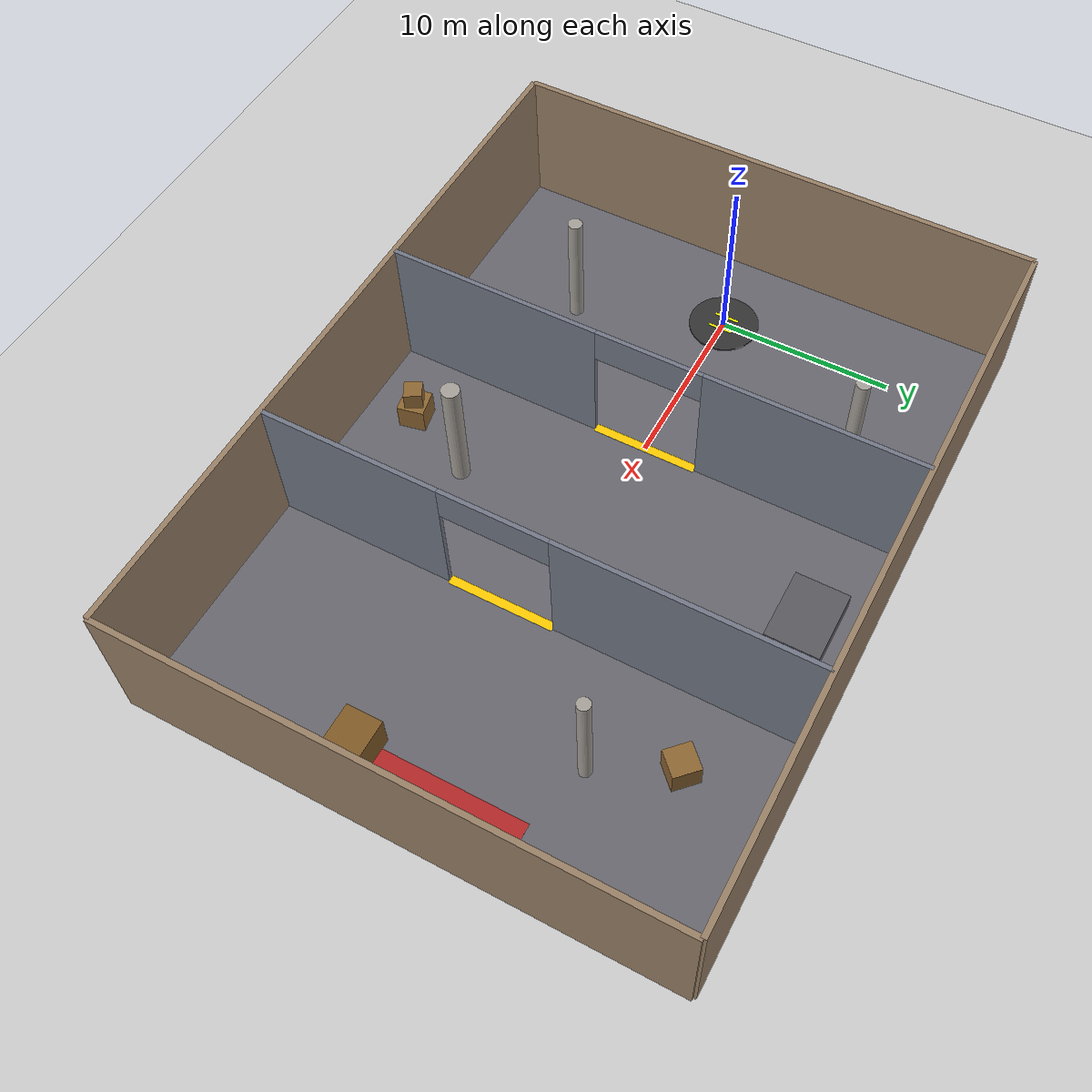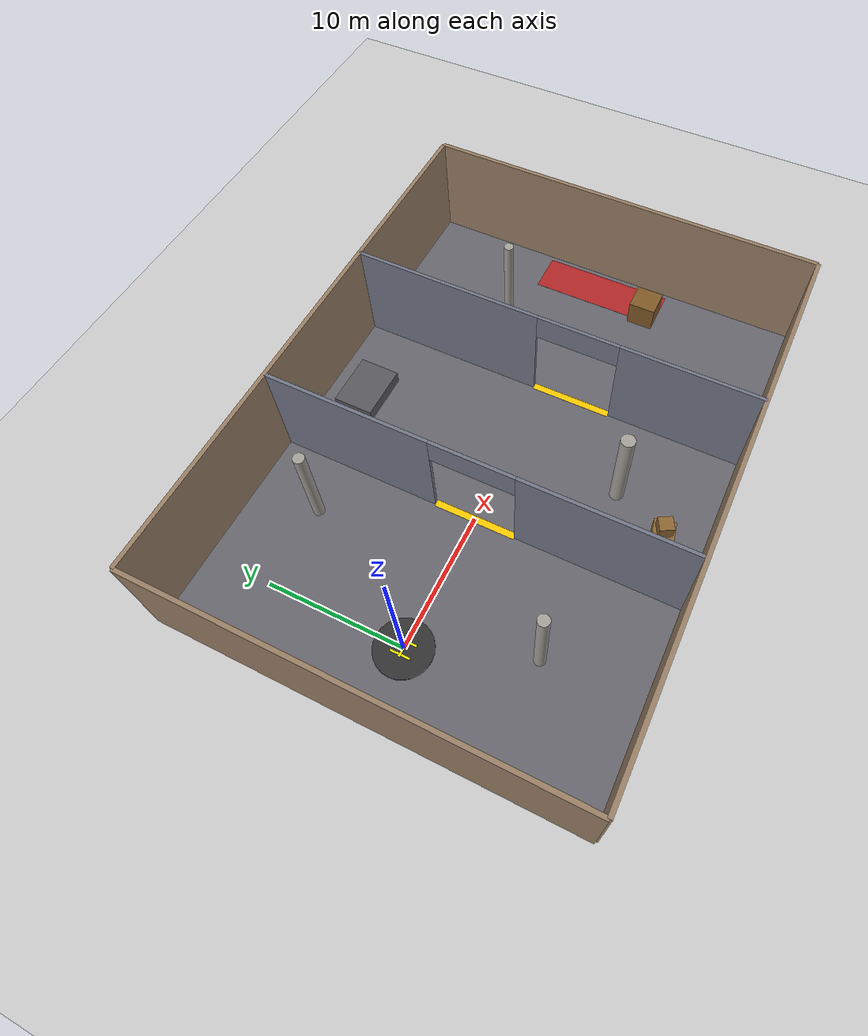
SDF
<?xml version="1.0"?>
<sdf version="1.6">
  <world name="aerial_nav_world">

    <physics type="ode">
      <max_step_size>0.001</max_step_size>
      <real_time_factor>1.0</real_time_factor>
      <real_time_update_rate>1000</real_time_update_rate>
    </physics>

    <include>
      <uri>model://sun</uri>
    </include>
    <light name="fill_light" type="directional">
      <cast_shadows>false</cast_shadows>
      <pose>0 0 20 0 0 0</pose>
      <diffuse>0.6 0.6 0.6 1</diffuse>
      <specular>0.1 0.1 0.1 1</specular>
      <direction>0.3 0.4 -1.0</direction>
    </light>
    <light name="interior_light_1" type="point">
      <pose>10 5 7 0 0 0</pose>
      <diffuse>0.9 0.8 0.6 1</diffuse>
      <specular>0.1 0.1 0.1 1</specular>
      <attenuation>
        <range>30</range>
        <constant>0.3</constant>
        <linear>0.01</linear>
        <quadratic>0.001</quadratic>
      </attenuation>
    </light>

    <light name="interior_light_2" type="point">
      <pose>20 -2 7 0 0 0</pose>
      <diffuse>0.7 0.75 0.9 1</diffuse>
      <specular>0.1 0.1 0.1 1</specular>
      <attenuation>
        <range>30</range>
        <constant>0.3</constant>
        <linear>0.01</linear>
        <quadratic>0.001</quadratic>
      </attenuation>
    </light>

    <include>
      <uri>model://ground_plane</uri>
    </include>

    <model name="arena_floor">
      <static>true</static>
      <pose>15 0 0.005 0 0 0</pose>
      <link name="floor_link">
        <visual name="visual">
          <geometry>
            <box><size>40 30 0.01</size></box>
          </geometry>
          <material>
            <ambient>0.35 0.35 0.38 1</ambient>
            <diffuse>0.4 0.4 0.43 1</diffuse>
            <specular>0.1 0.1 0.1 1</specular>
          </material>
        </visual>
      </link>
    </model>

    <gui fullscreen="0">
      <camera name="user_camera">
        <pose>-8 -18 18 0 0.55 1.1</pose>
      </camera>
    </gui>
    <model name="wall_south">
      <static>true</static>
      <pose>15 -15 4 0 0 0</pose>
      <link name="link">
        <visual name="visual">
          <geometry>
            <box><size>40 0.3 8</size></box>
          </geometry>
          <material>
            <ambient>0.55 0.45 0.35 1</ambient>
            <diffuse>0.6 0.5 0.4 1</diffuse>
            <specular>0.05 0.05 0.05 1</specular>
          </material>
        </visual>
        <collision name="collision">
          <geometry>
            <box><size>40 0.3 8</size></box>
          </geometry>
        </collision>
      </link>
    </model>

    <model name="wall_north">
      <static>true</static>
      <pose>15 15 4 0 0 0</pose>
      <link name="link">
        <visual name="visual">
          <geometry>
            <box><size>40 0.3 8</size></box>
          </geometry>
          <material>
            <ambient>0.55 0.45 0.35 1</ambient>
            <diffuse>0.6 0.5 0.4 1</diffuse>
            <specular>0.05 0.05 0.05 1</specular>
          </material>
        </visual>
        <collision name="collision">
          <geometry>
            <box><size>40 0.3 8</size></box>
          </geometry>
        </collision>
      </link>
    </model>
    <model name="wall_west">
      <static>true</static>
      <pose>-5 0 4 0 0 0</pose>
      <link name="link">
        <visual name="visual">
          <geometry>
            <box><size>0.3 30 8</size></box>
          </geometry>
          <material>
            <ambient>0.55 0.45 0.35 1</ambient>
            <diffuse>0.6 0.5 0.4 1</diffuse>
            <specular>0.05 0.05 0.05 1</specular>
          </material>
        </visual>
        <collision name="collision">
          <geometry>
            <box><size>0.3 30 8</size></box>
          </geometry>
        </collision>
      </link>
    </model>
    <model name="wall_east">
      <static>true</static>
      <pose>35 0 4 0 0 0</pose>
      <link name="link">
        <visual name="visual">
          <geometry>
            <box><size>0.3 30 8</size></box>
          </geometry>
          <material>
            <ambient>0.55 0.45 0.35 1</ambient>
            <diffuse>0.6 0.5 0.4 1</diffuse>
            <specular>0.05 0.05 0.05 1</specular>
          </material>
        </visual>
        <collision name="collision">
          <geometry>
            <box><size>0.3 30 8</size></box>
          </geometry>
        </collision>
      </link>
    </model>
    <model name="divider_a_south">
      <static>true</static>
      <pose>10 -9 4 0 0 0</pose>
      <link name="link">
        <visual name="visual">
          <geometry>
            <box><size>0.25 12 8</size></box>
          </geometry>
          <material>
            <ambient>0.4 0.42 0.48 1</ambient>
            <diffuse>0.45 0.47 0.53 1</diffuse>
            <specular>0.08 0.08 0.08 1</specular>
          </material>
        </visual>
        <collision name="collision">
          <geometry>
            <box><size>0.25 12 8</size></box>
          </geometry>
        </collision>
      </link>
    </model>

    <model name="divider_a_north">
      <static>true</static>
      <pose>10 9 4 0 0 0</pose>
      <link name="link">
        <visual name="visual">
          <geometry>
            <box><size>0.25 12 8</size></box>
          </geometry>
          <material>
            <ambient>0.4 0.42 0.48 1</ambient>
            <diffuse>0.45 0.47 0.53 1</diffuse>
            <specular>0.08 0.08 0.08 1</specular>
          </material>
        </visual>
        <collision name="collision">
          <geometry>
            <box><size>0.25 12 8</size></box>
          </geometry>
        </collision>
      </link>
    </model>

    <model name="divider_a_lintel">
      <static>true</static>
      <pose>10 0 7 0 0 0</pose>
      <link name="link">
        <visual name="visual">
          <geometry>
            <box><size>0.25 6 2</size></box>
          </geometry>
          <material>
            <ambient>0.4 0.42 0.48 1</ambient>
            <diffuse>0.45 0.47 0.53 1</diffuse>
            <specular>0.08 0.08 0.08 1</specular>
          </material>
        </visual>
        <collision name="collision">
          <geometry>
            <box><size>0.25 6 2</size></box>
          </geometry>
        </collision>
      </link>
    </model>

    <model name="divider_b_south">
      <static>true</static>
      <pose>22 -10 4 0 0 0</pose>
      <link name="link">
        <visual name="visual">
          <geometry>
            <box><size>0.25 10 8</size></box>
          </geometry>
          <material>
            <ambient>0.4 0.42 0.48 1</ambient>
            <diffuse>0.45 0.47 0.53 1</diffuse>
            <specular>0.08 0.08 0.08 1</specular>
          </material>
        </visual>
        <collision name="collision">
          <geometry>
            <box><size>0.25 10 8</size></box>
          </geometry>
        </collision>
      </link>
    </model>
    <model name="divider_b_north">
      <static>true</static>
      <pose>22 8 4 0 0 0</pose>
      <link name="link">
        <visual name="visual">
          <geometry>
            <box><size>0.25 14 8</size></box>
          </geometry>
          <material>
            <ambient>0.4 0.42 0.48 1</ambient>
            <diffuse>0.45 0.47 0.53 1</diffuse>
            <specular>0.08 0.08 0.08 1</specular>
          </material>
        </visual>
        <collision name="collision">
          <geometry>
            <box><size>0.25 14 8</size></box>
          </geometry>
        </collision>
      </link>
    </model>

    <model name="divider_b_lintel">
      <static>true</static>
      <pose>22 -2 7 0 0 0</pose>
      <link name="link">
        <visual name="visual">
          <geometry>
            <box><size>0.25 6 2</size></box>
          </geometry>
          <material>
            <ambient>0.4 0.42 0.48 1</ambient>
            <diffuse>0.45 0.47 0.53 1</diffuse>
            <specular>0.08 0.08 0.08 1</specular>
          </material>
        </visual>
        <collision name="collision">
          <geometry>
            <box><size>0.25 6 2</size></box>
          </geometry>
        </collision>
      </link>
    </model>
    <model name="pillar_01">
      <static>true</static>
      <pose>3 -8 3.5 0 0 0</pose>
      <link name="link">
        <visual name="visual">
          <geometry>
            <cylinder><radius>0.4</radius><length>7</length></cylinder>
          </geometry>
          <material>
            <ambient>0.6 0.58 0.55 1</ambient>
            <diffuse>0.65 0.63 0.6 1</diffuse>
            <specular>0.15 0.15 0.15 1</specular>
          </material>
        </visual>
        <collision name="collision">
          <geometry>
            <cylinder><radius>0.4</radius><length>7</length></cylinder>
          </geometry>
        </collision>
      </link>
    </model>

    <model name="pillar_02">
      <static>true</static>
      <pose>6 10 3.5 0 0 0</pose>
      <link name="link">
        <visual name="visual">
          <geometry>
            <cylinder><radius>0.4</radius><length>7</length></cylinder>
          </geometry>
          <material>
            <ambient>0.6 0.58 0.55 1</ambient>
            <diffuse>0.65 0.63 0.6 1</diffuse>
            <specular>0.15 0.15 0.15 1</specular>
          </material>
        </visual>
        <collision name="collision">
          <geometry>
            <cylinder><radius>0.4</radius><length>7</length></cylinder>
          </geometry>
        </collision>
      </link>
    </model>

    <model name="pillar_03">
      <static>true</static>
      <pose>16 -8 3.5 0 0 0</pose>
      <link name="link">
        <visual name="visual">
          <geometry>
            <cylinder><radius>0.5</radius><length>7</length></cylinder>
          </geometry>
          <material>
            <ambient>0.6 0.58 0.55 1</ambient>
            <diffuse>0.65 0.63 0.6 1</diffuse>
            <specular>0.15 0.15 0.15 1</specular>
          </material>
        </visual>
        <collision name="collision">
          <geometry>
            <cylinder><radius>0.5</radius><length>7</length></cylinder>
          </geometry>
        </collision>
      </link>
    </model>

    <model name="pillar_04">
      <static>true</static>
      <pose>28 6 3.5 0 0 0</pose>
      <link name="link">
        <visual name="visual">
          <geometry>
            <cylinder><radius>0.35</radius><length>7</length></cylinder>
          </geometry>
          <material>
            <ambient>0.6 0.58 0.55 1</ambient>
            <diffuse>0.65 0.63 0.6 1</diffuse>
            <specular>0.15 0.15 0.15 1</specular>
          </material>
        </visual>
        <collision name="collision">
          <geometry>
            <cylinder><radius>0.35</radius><length>7</length></cylinder>
          </geometry>
        </collision>
      </link>
    </model>

    <model name="crate_stack_01">
      <static>true</static>
      <pose>14 -12 0.75 0 0 0.2</pose>
      <link name="link">
        <visual name="visual">
          <geometry>
            <box><size>1.5 1.5 1.5</size></box>
          </geometry>
          <material>
            <ambient>0.5 0.35 0.15 1</ambient>
            <diffuse>0.55 0.4 0.2 1</diffuse>
            <specular>0.05 0.05 0.05 1</specular>
          </material>
        </visual>
        <collision name="collision">
          <geometry>
            <box><size>1.5 1.5 1.5</size></box>
          </geometry>
        </collision>
      </link>
    </model>

    <model name="crate_stack_02">
      <static>true</static>
      <pose>14 -12 2.0 0 0 0.5</pose>
      <link name="link">
        <visual name="visual">
          <geometry>
            <box><size>1.0 1.0 1.0</size></box>
          </geometry>
          <material>
            <ambient>0.5 0.35 0.15 1</ambient>
            <diffuse>0.55 0.4 0.2 1</diffuse>
            <specular>0.05 0.05 0.05 1</specular>
          </material>
        </visual>
        <collision name="collision">
          <geometry>
            <box><size>1.0 1.0 1.0</size></box>
          </geometry>
        </collision>
      </link>
    </model>

    <model name="crate_stack_03">
      <static>true</static>
      <pose>26 10 0.75 0 0 0.8</pose>
      <link name="link">
        <visual name="visual">
          <geometry>
            <box><size>1.5 1.5 1.5</size></box>
          </geometry>
          <material>
            <ambient>0.5 0.35 0.15 1</ambient>
            <diffuse>0.55 0.4 0.2 1</diffuse>
            <specular>0.05 0.05 0.05 1</specular>
          </material>
        </visual>
        <collision name="collision">
          <geometry>
            <box><size>1.5 1.5 1.5</size></box>
          </geometry>
        </collision>
      </link>
    </model>

    <model name="crate_large">
      <static>true</static>
      <pose>32 -4 1.0 0 0 0</pose>
      <link name="link">
        <visual name="visual">
          <geometry>
            <box><size>2.0 2.0 2.0</size></box>
          </geometry>
          <material>
            <ambient>0.45 0.3 0.12 1</ambient>
            <diffuse>0.5 0.35 0.15 1</diffuse>
            <specular>0.05 0.05 0.05 1</specular>
          </material>
        </visual>
        <collision name="collision">
          <geometry>
            <box><size>2.0 2.0 2.0</size></box>
          </geometry>
        </collision>
      </link>
    </model>

    <model name="landing_pad">
      <static>true</static>
      <pose>0 0 0.05 0 0 0</pose>
      <link name="pad_link">
        <visual name="visual">
          <geometry>
            <cylinder><radius>2.0</radius><length>0.1</length></cylinder>
          </geometry>
          <material>
            <ambient>0.15 0.15 0.15 1</ambient>
            <diffuse>0.2 0.2 0.2 1</diffuse>
            <specular>0.3 0.3 0.3 1</specular>
          </material>
        </visual>
        <collision name="collision">
          <geometry>
            <cylinder><radius>2.0</radius><length>0.1</length></cylinder>
          </geometry>
        </collision>
      </link>
    </model>

    <model name="landing_h_bar">
      <static>true</static>
      <pose>0 0 0.11 0 0 0</pose>
      <link name="link">
        <visual name="visual">
          <geometry>
            <box><size>1.2 0.15 0.01</size></box>
          </geometry>
          <material>
            <ambient>0.9 0.9 0.0 1</ambient>
            <diffuse>1.0 1.0 0.0 1</diffuse>
          </material>
        </visual>
      </link>
    </model>
    <model name="landing_h_left">
      <static>true</static>
      <pose>-0.45 0 0.11 0 0 0</pose>
      <link name="link">
        <visual name="visual">
          <geometry>
            <box><size>0.15 1.4 0.01</size></box>
          </geometry>
          <material>
            <ambient>0.9 0.9 0.0 1</ambient>
            <diffuse>1.0 1.0 0.0 1</diffuse>
          </material>
        </visual>
      </link>
    </model>
    <model name="landing_h_right">
      <static>true</static>
      <pose>0.45 0 0.11 0 0 0</pose>
      <link name="link">
        <visual name="visual">
          <geometry>
            <box><size>0.15 1.4 0.01</size></box>
          </geometry>
          <material>
            <ambient>0.9 0.9 0.0 1</ambient>
            <diffuse>1.0 1.0 0.0 1</diffuse>
          </material>
        </visual>
      </link>
    </model>

    <model name="platform_01">
      <static>true</static>
      <pose>16 12 0.5 0 0 0</pose>
      <link name="link">
        <visual name="visual">
          <geometry>
            <box><size>4 3 1.0</size></box>
          </geometry>
          <material>
            <ambient>0.3 0.3 0.32 1</ambient>
            <diffuse>0.35 0.35 0.37 1</diffuse>
            <specular>0.1 0.1 0.1 1</specular>
          </material>
        </visual>
        <collision name="collision">
          <geometry>
            <box><size>4 3 1.0</size></box>
          </geometry>
        </collision>
      </link>
    </model>
    <!-- Gate models commented out - system uses waypoint-based navigation, not gate detection -->
    <!-- Aerialgate models were causing Gazebo to hang trying to find missing models -->
    <!-- Enable these if you have aerial_gate models installed in Gazebo models directory -->
    <model name="floor_stripe_a">
      <static>true</static>
      <pose>10 0 0.015 0 0 0</pose>
      <link name="link">
        <visual name="visual">
          <geometry>
            <box><size>0.5 6 0.01</size></box>
          </geometry>
          <material>
            <ambient>0.9 0.7 0.0 1</ambient>
            <diffuse>1.0 0.8 0.0 1</diffuse>
          </material>
        </visual>
      </link>
    </model>

    <model name="floor_stripe_b">
      <static>true</static>
      <pose>22 -2 0.015 0 0 0</pose>
      <link name="link">
        <visual name="visual">
          <geometry>
            <box><size>0.5 6 0.01</size></box>
          </geometry>
          <material>
            <ambient>0.9 0.7 0.0 1</ambient>
            <diffuse>1.0 0.8 0.0 1</diffuse>
          </material>
        </visual>
      </link>
    </model>

    <model name="danger_zone">
      <static>true</static>
      <pose>33 0 0.015 0 0 0</pose>
      <link name="link">
        <visual name="visual">
          <geometry>
            <box><size>3 10 0.01</size></box>
          </geometry>
          <material>
            <ambient>0.6 0.1 0.1 1</ambient>
            <diffuse>0.7 0.15 0.15 1</diffuse>
          </material>
        </visual>
      </link>
    </model>

    <plugin name="gazebo_ros_state" filename="libgazebo_ros_state.so">
      <ros>
        <namespace>/aerial_nav</namespace>
      </ros>
      <update_rate>50</update_rate>
    </plugin>

  </world>
</sdf>
